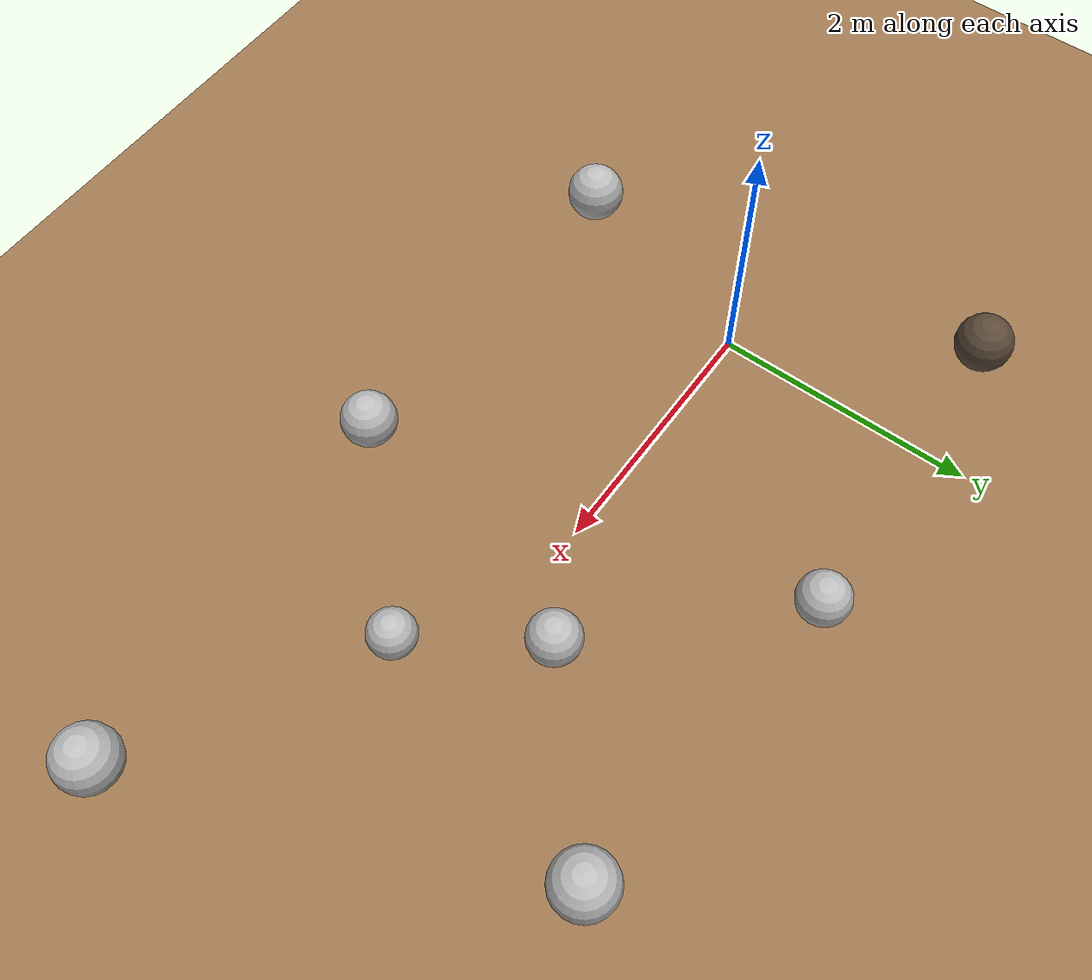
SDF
<?xml version="1.0"?>
<sdf version="1.6">
  <world name="mars_rocks">

    <physics type="ode">
      <max_step_size>0.001</max_step_size>
      <real_time_factor>1.0</real_time_factor>
      <real_time_update_rate>1000</real_time_update_rate>
    </physics>

    <gravity>0 0 -3.711</gravity>

    <include>
      <uri>model://sun</uri>
    </include>

    <include>
      <uri>model://regolith_flat</uri>
      <name>terrain</name>
      <pose>0 0 0 0 0 0</pose>
    </include>

    <plugin name="terrain_preset" filename="libterrain_preset_plugin.so">
      <preset>regolith_nominal</preset>
      <target_model>terrain</target_model>
      <target_link>ground</target_link>
    </plugin>

    <!-- Rock field RF-001: corridor hazards -->
    <!-- Left boundary rocks -->
    <model name="rock_L1">
      <static>true</static>
      <pose>-1.0  1.6 0.20 0 0 0</pose>
      <link name="link">
        <collision name="c">
          <geometry><sphere><radius>0.22</radius></sphere></geometry>
        </collision>
        <visual name="v">
          <geometry><sphere><radius>0.22</radius></sphere></geometry>
          <material><ambient>0.35 0.28 0.22 1</ambient><diffuse>0.35 0.28 0.22 1</diffuse></material>
        </visual>
      </link>
    </model>

    <model name="rock_L2">
      <static>true</static>
      <pose>1.5  1.7 0.18 0 0 0</pose>
      <link name="link">
        <collision name="c"><geometry><sphere><radius>0.20</radius></sphere></geometry></collision>
        <visual name="v"><geometry><sphere><radius>0.20</radius></sphere></geometry></visual>
      </link>
    </model>

    <model name="rock_L3">
      <static>true</static>
      <pose>4.0  1.5 0.22 0 0 0</pose>
      <link name="link">
        <collision name="c"><geometry><sphere><radius>0.24</radius></sphere></geometry></collision>
        <visual name="v"><geometry><sphere><radius>0.24</radius></sphere></geometry></visual>
      </link>
    </model>

    <!-- Right boundary rocks -->
    <model name="rock_R1">
      <static>true</static>
      <pose>-0.5 -1.6 0.20 0 0 0</pose>
      <link name="link">
        <collision name="c"><geometry><sphere><radius>0.22</radius></sphere></geometry></collision>
        <visual name="v"><geometry><sphere><radius>0.22</radius></sphere></geometry></visual>
      </link>
    </model>

    <model name="rock_R2">
      <static>true</static>
      <pose>2.2 -1.7 0.19 0 0 0</pose>
      <link name="link">
        <collision name="c"><geometry><sphere><radius>0.21</radius></sphere></geometry></collision>
        <visual name="v"><geometry><sphere><radius>0.21</radius></sphere></geometry></visual>
      </link>
    </model>

    <model name="rock_R3">
      <static>true</static>
      <pose>5.2 -1.5 0.23 0 0 0</pose>
      <link name="link">
        <collision name="c"><geometry><sphere><radius>0.24</radius></sphere></geometry></collision>
        <visual name="v"><geometry><sphere><radius>0.24</radius></sphere></geometry></visual>
      </link>
    </model>

    <!-- Mid-field "decision" rocks to force planning -->
    <model name="rock_M1">
      <static>true</static>
      <pose>2.8  0.4 0.20 0 0 0</pose>
      <link name="link">
        <collision name="c"><geometry><sphere><radius>0.20</radius></sphere></geometry></collision>
        <visual name="v"><geometry><sphere><radius>0.20</radius></sphere></geometry></visual>
      </link>
    </model>

    <model name="rock_M2">
      <static>true</static>
      <pose>3.4 -0.5 0.18 0 0 0</pose>
      <link name="link">
        <collision name="c"><geometry><sphere><radius>0.18</radius></sphere></geometry></collision>
        <visual name="v"><geometry><sphere><radius>0.18</radius></sphere></geometry></visual>
      </link>
    </model>

  </world>
</sdf>

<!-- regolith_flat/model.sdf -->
<sdf version="1.6">
  <model name="regolith_flat">
    <static>true</static>
    <link name="ground">
      <collision name="collision">
        <geometry>
          <plane>
            <normal>0 0 1</normal>
            <size>200 200</size>
          </plane>
        </geometry>
        <surface>
          <friction>
            <ode>
              <mu>0.7</mu>
              <mu2>0.7</mu2>
            </ode>
          </friction>
          <bounce>
            <restitution_coefficient>0.05</restitution_coefficient>
          </bounce>
        </surface>
      </collision>

      <visual name="visual">
        <geometry>
          <plane>
            <normal>0 0 1</normal>
            <size>200 200</size>
          </plane>
        </geometry>
        <material>
          <ambient>0.60 0.45 0.30 1</ambient>
          <diffuse>0.60 0.45 0.30 1</diffuse>
        </material>
      </visual>
    </link>
  </model>
</sdf>
